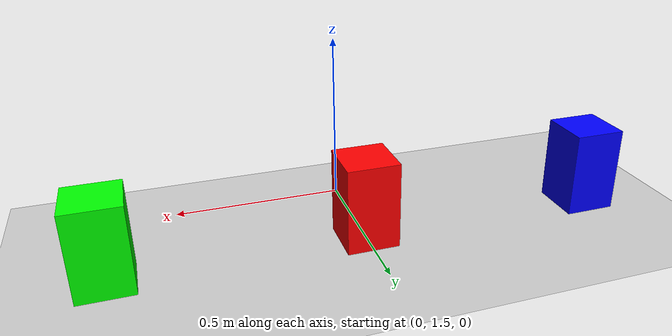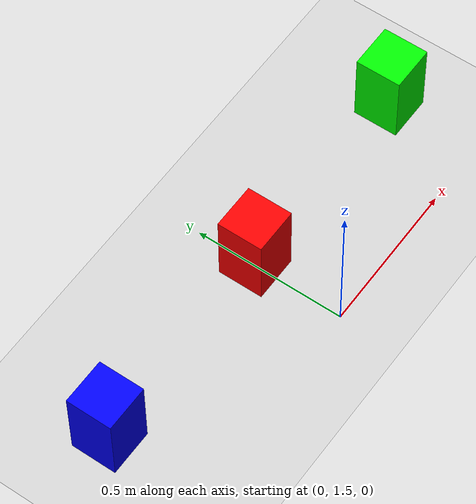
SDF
<sdf version="1.9">
  <world name="default">
    <physics name="1ms" type="ignored">
      <max_step_size>0.001</max_step_size>
      <real_time_factor>1</real_time_factor>
      <real_time_update_rate>1000</real_time_update_rate>
    </physics>

    <plugin filename="ignition-gazebo-physics-system" name="ignition::gazebo::systems::Physics"/>
    <plugin filename="ignition-gazebo-user-commands-system" name="ignition::gazebo::systems::UserCommands"/>
    <plugin filename="ignition-gazebo-scene-broadcaster-system" name="ignition::gazebo::systems::SceneBroadcaster"/>
    <plugin filename="ignition-gazebo-sensors-system" name="ignition::gazebo::systems::Sensors">
      <render_engine>ogre2</render_engine>
    </plugin>

    <gravity>0 0 -9.8</gravity>
    <magnetic_field>6e-06 2.3e-05 -4.2e-05</magnetic_field>
    <atmosphere type="adiabatic"/>

    <scene>
      <ambient>0.4 0.4 0.4 1</ambient>
      <background>0.7 0.7 0.7 1</background>
      <shadows>true</shadows>
    </scene>

    <light name="sun" type="directional">
      <pose>0 0 10 0 0 0</pose>
      <cast_shadows>true</cast_shadows>
      <intensity>1</intensity>
      <direction>-0.5 0.1 -0.9</direction>
    </light>

    <model name="ground_plane">
      <static>true</static>
      <link name="link">
        <collision name="collision">
          <geometry>
            <plane>
              <normal>0 0 1</normal>
              <size>100 100</size>
            </plane>
          </geometry>
        </collision>
        <visual name="visual">
          <geometry>
            <plane>
              <normal>0 0 1</normal>
              <size>100 100</size>
            </plane>
          </geometry>
          <material>
            <ambient>0.8 0.8 0.8 1</ambient>
            <diffuse>0.8 0.8 0.8 1</diffuse>
            <specular>0.8 0.8 0.8 1</specular>
          </material>
        </visual>
      </link>
    </model>

    <!-- ================= RED BOX ================= -->
    <model name="red_box">
      <static>false</static>
      <link name="red_link">
        <pose>0.0 1.8 0.1 0 0 0</pose>
        <collision name="red_collision">
          <geometry>
            <box>
              <size>0.15 0.15 0.3</size>
            </box>
          </geometry>
        </collision>
        <visual name="red_visual">
          <geometry>
            <box>
              <size>0.15 0.15 0.3</size>
            </box>
          </geometry>
          <material>
            <ambient>1 0 0 1</ambient>   <!-- Red -->
            <diffuse>1 0 0 1</diffuse>
          </material>
        </visual>
      </link>
    </model>

    <!-- ================= GREEN BOX ================= -->
    <model name="green_box">
      <static>false</static>
      <link name="green_link">
        <pose>0.7 1.8 0.1 0 0 0</pose>
        <collision name="green_collision">
          <geometry>
            <box>
              <size>0.15 0.15 0.3</size>
            </box>
          </geometry>
        </collision>
        <visual name="green_visual">
          <geometry>
            <box>
              <size>0.15 0.15 0.3</size>
            </box>
          </geometry>
          <material>
            <ambient>0 1 0 1</ambient>   <!-- Green -->
            <diffuse>0 1 0 1</diffuse>
          </material>
        </visual>
      </link>
    </model>

    <!-- ================= BLUE BOX ================= -->
    <model name="blue_box">
      <static>false</static>
      <link name="blue_link">
        <pose>-0.7 1.8 0.1 0 0 0</pose>
        <collision name="blue_collision">
          <geometry>
            <box>
              <size>0.15 0.15 0.3</size>
            </box>
          </geometry>
        </collision>
        <visual name="blue_visual">
          <geometry>
            <box>
              <size>0.15 0.15 0.3</size>
            </box>
          </geometry>
          <material>
            <ambient>0 0 1 1</ambient>   <!-- Blue -->
            <diffuse>0 0 1 1</diffuse>
          </material>
        </visual>
      </link>
    </model>

  </world>
</sdf>
